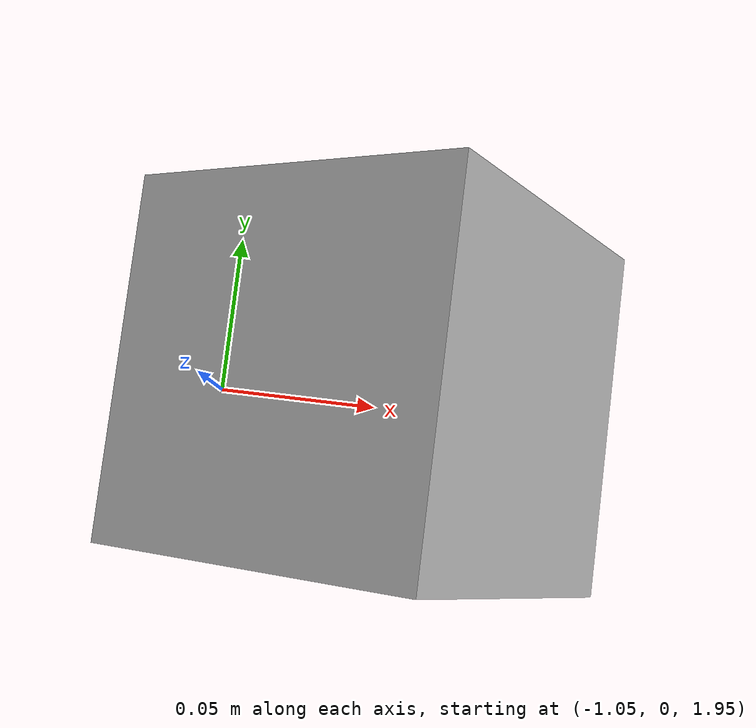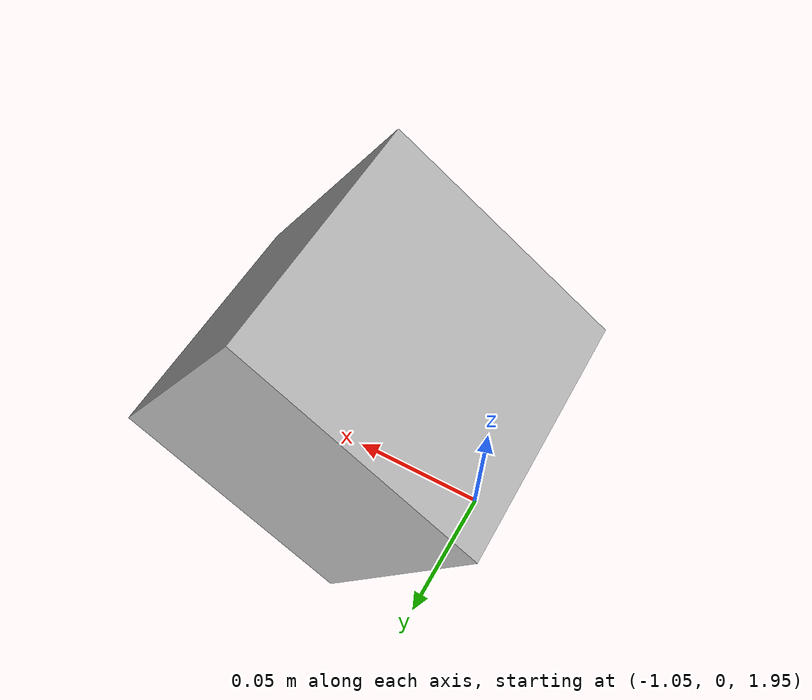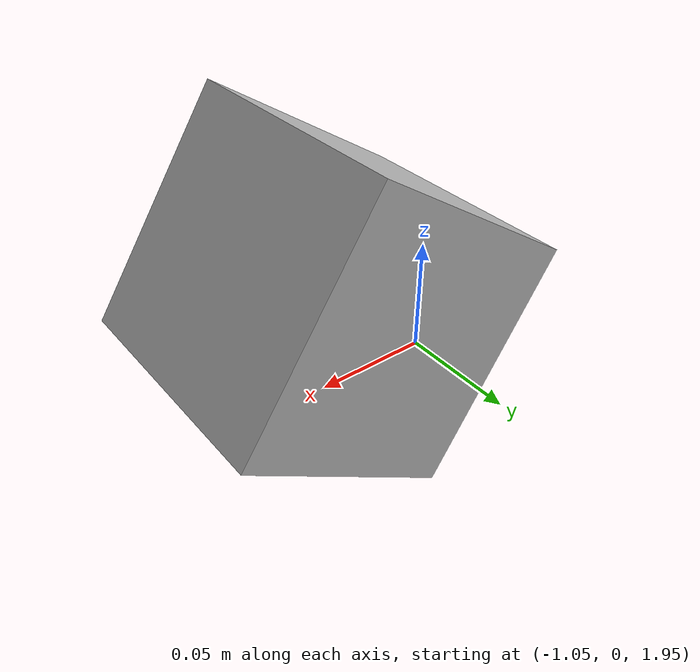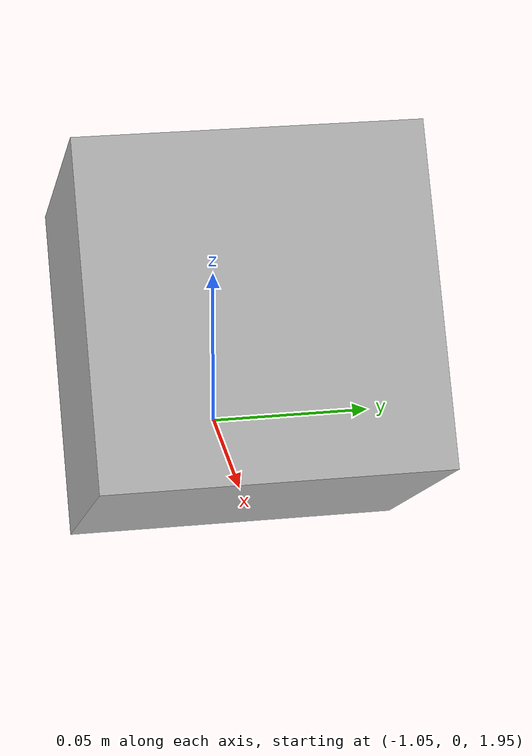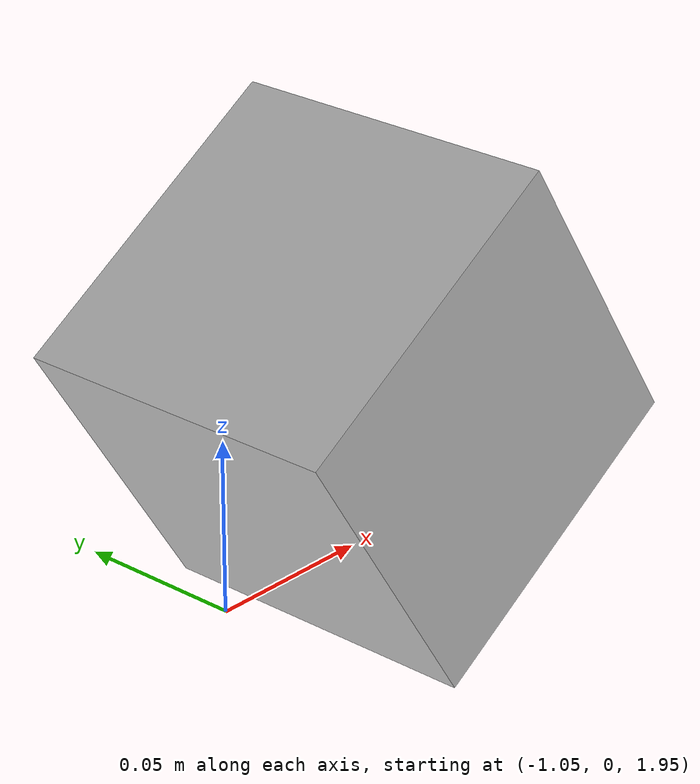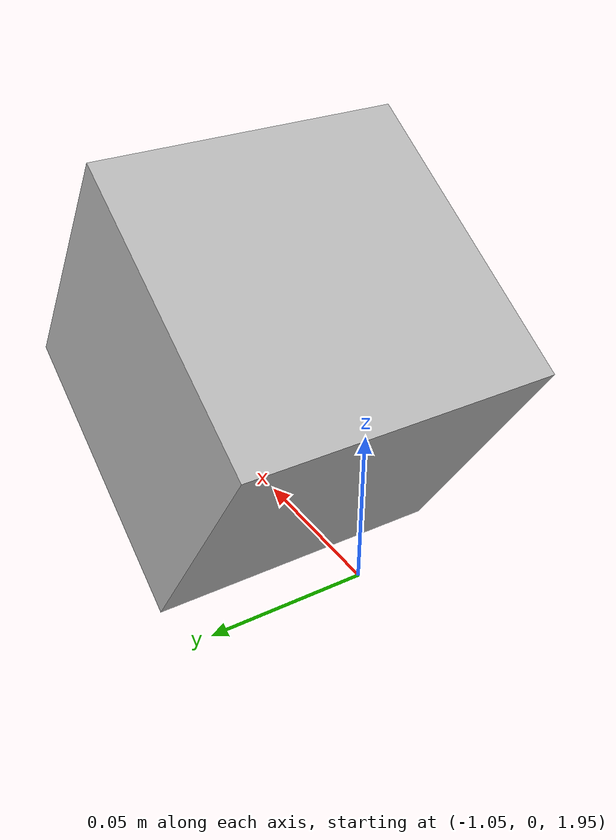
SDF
<?xml version="1.0" ?>
<sdf version="1.5">
    <world name="default">
        <scene>
            <origin_visual>0</origin_visual>
            <grid>0</grid>
            <shadows>0</shadows>
        </scene>

        <physics type="ode">
            <max_step_size>0.005</max_step_size>

            <!-- Run as fast as possible -->
            <real_time_update_rate>200</real_time_update_rate>

            <ode>
                <constraints>
                    <!-- Simulator.cpp -->
                    <erp>0.1</erp>
                    <cfm>10e-6</cfm>

                    <!-- Making this smaller seems to decrease rather than increase stability. -->
                    <contact_max_correcting_vel>100</contact_max_correcting_vel>
                    <contact_surface_layer>1e-8</contact_surface_layer>
                </constraints>
                <solver>
                    <type>world</type>
                </solver>
            </ode>
        </physics>

        <model name='Recording'>
            <static>true</static>
            <pose>-1 0 2 0 1 0</pose>
            <link name='link'>
                <visual name='visual'>
                    <geometry>
                        <box>
                            <size>0.1 0.1 0.1</size>
                        </box>
                    </geometry>
                </visual>
                <sensor name='RecordingCamera' type='camera'>
                    <camera>
                        <save enabled='false'>
                            <path>/tmp/camera_save_tutorial</path>
                        </save>
                        <horizontal_fov>1.047</horizontal_fov>
                        <image>
                            <width>1920</width>
                            <height>1080</height>
                        </image>
                        <clip>
                            <near>0.1</near>
                            <far>100</far>
                        </clip>
                    </camera>
                    <always_on>1</always_on>
                    <update_rate>30</update_rate>
                    <plugin name='RecordingCameraController' filename='libRecorderCameraPlugin.so'>
                        <movie_length seconds="35.0" />
                        <save_file_path>/home/matteo/.gazebo/videos/</save_file_path>
                    </plugin>
                </sensor>
            </link>
        </model>

        <!-- A global light source -->
        <include>
            <uri>model://sun</uri>
        </include>
        <include>
            <uri>model://tol_ground</uri>
        </include>

        <plugin name="revolve-world" filename="libWorldControlPlugin.so" />
    </world>
</sdf>

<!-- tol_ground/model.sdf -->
<sdf version="1.5">
<!-- Custom ground plane -->
  <model name="tol_ground">
    <static>true</static>
    <link name="link">
      <collision name="collision">
        <geometry>
          <plane>
            <normal>0 0 1</normal>
            <size>100 100</size>
          </plane>
        </geometry>
        <surface>
          <friction>
            <ode>
              <!-- RobogenCollision.cpp -->
              <mu>1</mu>
              <mu2>1</mu2>
              <slip1>0.01</slip1>
              <slip2>0.01</slip2>
            </ode>
          </friction>
          <contact>
            <ode>
              <kd>9.000000e+04</kd>
              <kp>2.000000e+06</kp>
            </ode>
          </contact>
        </surface>
      </collision>
      <visual name="visual">
        <cast_shadows>false</cast_shadows>
        <geometry>
          <plane>
            <normal>0 0 1</normal>
            <size>100 100</size>
          </plane>
        </geometry>
        <material>
          <script>
            <uri>model://tol_ground/materials/scripts</uri>
            <uri>model://tol_ground/materials/textures</uri>
            <name>Floor/Concrete1</name>
          </script>
        </material>
      </visual>
    </link>
  </model>
<!-- END Custom ground plane -->
</sdf>
